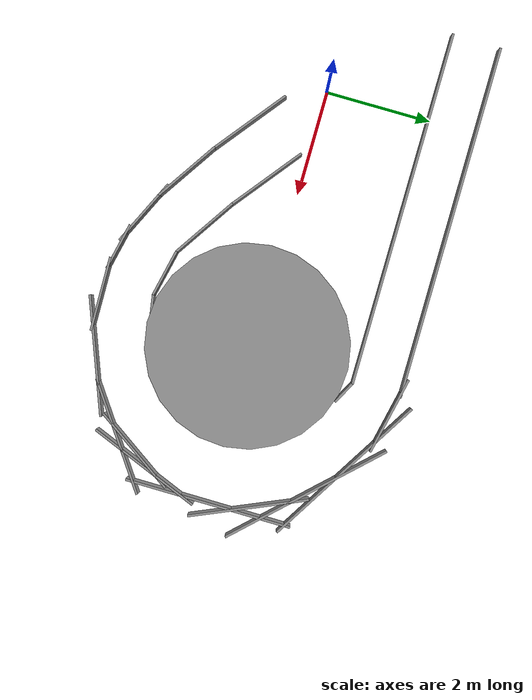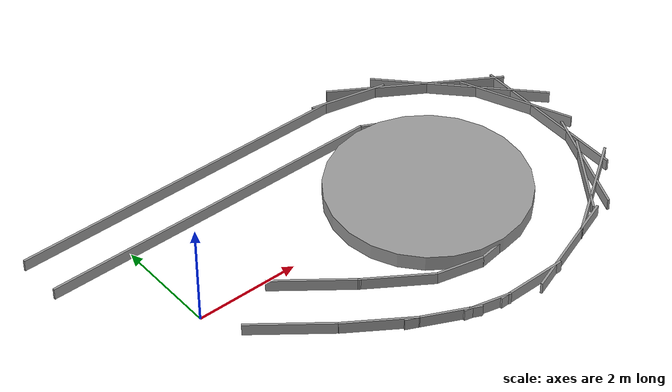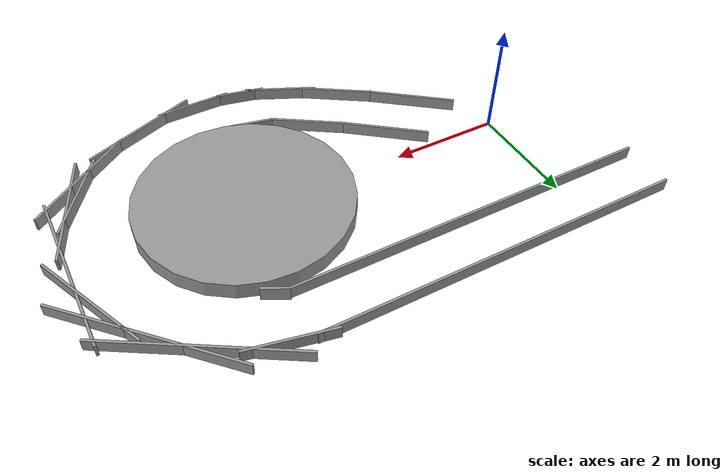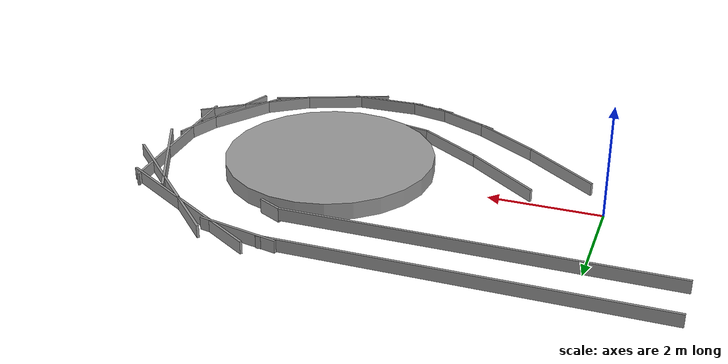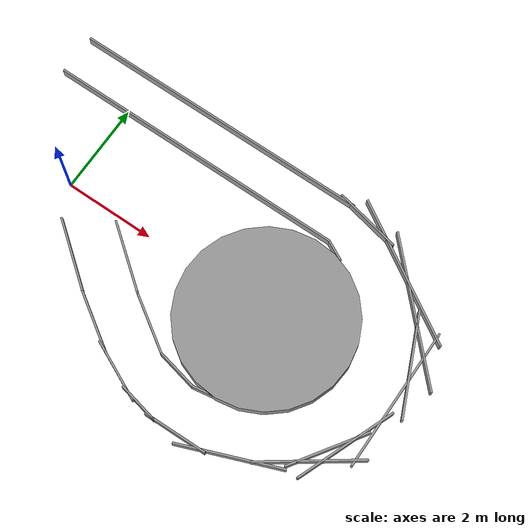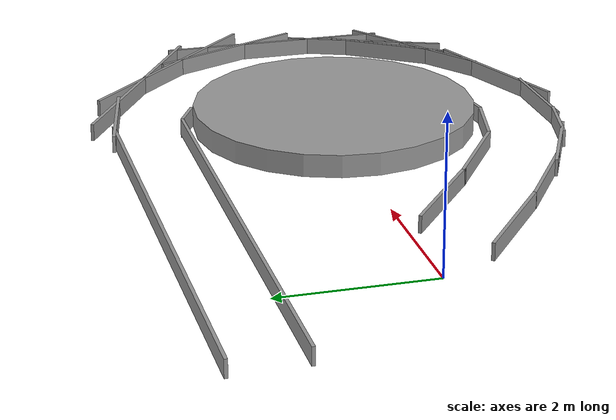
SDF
<sdf version="1.5">
 <world name="default">
  <model name="grey_wall_track_1">
   <link name="link">
    <pose>0 0 1.4 0 -0 0</pose>
    <inertial>
     <inertia><ixx>nan</ixx><ixy>0</ixy><ixz>0</ixz><iyy>nan</iyy><iyz>0</iyz><izz>nan</izz></inertia>
     <mass>0</mass>
    </inertial>
    <visual name="visual">
     <cast_shadows>0</cast_shadows>
     <geometry><box><size>6.7262 0.043266 0.226147</size></box></geometry>
     <material>
      <script>
       <uri>model://grey_wall/materials/scripts</uri>
       <uri>model://grey_wall/materials/textures</uri>
       <name>vrc/grey_wall</name>
      </script>
      <ambient>1 1 1 1</ambient>
      <diffuse>1 1 1 1</diffuse>
      <specular>0 0 0 1</specular>
      <emissive>0 0 0 1</emissive>
     </material>
    </visual>
    <collision name="collision">
     <geometry><box><size>6.7262 0.043266 0.226147</size></box></geometry>
     <surface>
      <friction>
       <ode><mu>1</mu><mu2>1</mu2><fdir1>0 0 0</fdir1><slip1>0</slip1><slip2>0</slip2></ode>
       <torsional>
        <coefficient>1</coefficient>
        <patch_radius>0</patch_radius>
        <surface_radius>0</surface_radius>
        <use_patch_radius>1</use_patch_radius>
        <ode><slip>0</slip></ode>
       </torsional>
      </friction>
      <bounce><restitution_coefficient>0</restitution_coefficient><threshold>1e+06</threshold></bounce>
      <contact>
       <collide_without_contact>0</collide_without_contact>
       <collide_without_contact_bitmask>1</collide_without_contact_bitmask>
       <collide_bitmask>1</collide_bitmask>
       <ode>
        <soft_cfm>0</soft_cfm>
        <soft_erp>0.2</soft_erp>
        <kp>1e+13</kp>
        <kd>1</kd>
        <max_vel>0.01</max_vel>
        <min_depth>0</min_depth>
       </ode>
       <bullet>
        <split_impulse>1</split_impulse>
        <split_impulse_penetration_threshold>-0.01</split_impulse_penetration_threshold>
        <soft_cfm>0</soft_cfm>
        <soft_erp>0.2</soft_erp>
        <kp>1e+13</kp>
        <kd>1</kd>
       </bullet>
      </contact>
     </surface>
    </collision>
   </link>
   <static>1</static>
   <pose>1.7337 1.94342 -1.28559 0 -0 0</pose>
  </model>
  <model name="grey_wall_track_2">
   <link name="link">
    <pose>0 0 1.4 0 -0 0</pose>
    <inertial>
     <inertia><ixx>nan</ixx><ixy>0</ixy><ixz>0</ixz><iyy>nan</iyy><iyz>0</iyz><izz>nan</izz></inertia>
     <mass>0</mass>
    </inertial>
    <visual name="visual">
     <cast_shadows>0</cast_shadows>
     <geometry><box><size>6.7262 0.043266 0.226147</size></box></geometry>
     <material>
      <script>
       <uri>model://grey_wall/materials/scripts</uri>
       <uri>model://grey_wall/materials/textures</uri>
       <name>vrc/grey_wall</name>
      </script>
      <ambient>1 1 1 1</ambient>
      <diffuse>1 1 1 1</diffuse>
      <specular>0 0 0 1</specular>
      <emissive>0 0 0 1</emissive>
     </material>
    </visual>
    <collision name="collision">
     <geometry><box><size>6.7262 0.043266 0.226147</size></box></geometry>
     <surface>
      <friction>
       <ode><mu>1</mu><mu2>1</mu2><fdir1>0 0 0</fdir1><slip1>0</slip1><slip2>0</slip2></ode>
       <torsional>
        <coefficient>1</coefficient>
        <patch_radius>0</patch_radius>
        <surface_radius>0</surface_radius>
        <use_patch_radius>1</use_patch_radius>
        <ode><slip>0</slip></ode>
       </torsional>
      </friction>
      <bounce><restitution_coefficient>0</restitution_coefficient><threshold>1e+06</threshold></bounce>
      <contact>
       <collide_without_contact>0</collide_without_contact>
       <collide_without_contact_bitmask>1</collide_without_contact_bitmask>
       <collide_bitmask>1</collide_bitmask>
       <ode>
        <soft_cfm>0</soft_cfm>
        <soft_erp>0.2</soft_erp>
        <kp>1e+13</kp>
        <kd>1</kd>
        <max_vel>0.01</max_vel>
        <min_depth>0</min_depth>
       </ode>
       <bullet>
        <split_impulse>1</split_impulse>
        <split_impulse_penetration_threshold>-0.01</split_impulse_penetration_threshold>
        <soft_cfm>0</soft_cfm>
        <soft_erp>0.2</soft_erp>
        <kp>1e+13</kp>
        <kd>1</kd>
       </bullet>
      </contact>
     </surface>
    </collision>
   </link>
   <static>1</static>
   <pose>1.73864 2.86141 -1.30508 0 -0 0</pose>
  </model>
  <model name="grey_wall_twisted_s_2">
   <link name="link">
    <pose>0 0 1.4 0 0 -0.580025</pose>
    <inertial>
     <inertia><ixx>nan</ixx><ixy>0</ixy><ixz>0</ixz><iyy>nan</iyy><iyz>0</iyz><izz>nan</izz></inertia>
     <mass>0</mass>
    </inertial>
    <visual name="visual">
     <cast_shadows>0</cast_shadows>
     <geometry><box><size>1.36861 0.043266 0.226147</size></box></geometry>
     <material>
      <script>
       <uri>model://grey_wall/materials/scripts</uri>
       <uri>model://grey_wall/materials/textures</uri>
       <name>vrc/grey_wall</name>
      </script>
      <ambient>1 1 1 1</ambient>
      <diffuse>1 1 1 1</diffuse>
      <specular>0 0 0 1</specular>
      <emissive>0 0 0 1</emissive>
     </material>
    </visual>
    <collision name="collision">
     <geometry><box><size>1.36861 0.043266 0.226147</size></box></geometry>
     <surface>
      <friction>
       <ode><mu>1</mu><mu2>1</mu2><fdir1>0 0 0</fdir1><slip1>0</slip1><slip2>0</slip2></ode>
       <torsional>
        <coefficient>1</coefficient>
        <patch_radius>0</patch_radius>
        <surface_radius>0</surface_radius>
        <use_patch_radius>1</use_patch_radius>
        <ode><slip>0</slip></ode>
       </torsional>
      </friction>
      <bounce><restitution_coefficient>0</restitution_coefficient><threshold>1e+06</threshold></bounce>
      <contact>
       <collide_without_contact>0</collide_without_contact>
       <collide_without_contact_bitmask>1</collide_without_contact_bitmask>
       <collide_bitmask>1</collide_bitmask>
       <ode>
        <soft_cfm>0</soft_cfm>
        <soft_erp>0.2</soft_erp>
        <kp>1e+13</kp>
        <kd>1</kd>
        <max_vel>0.01</max_vel>
        <min_depth>0</min_depth>
       </ode>
       <bullet>
        <split_impulse>1</split_impulse>
        <split_impulse_penetration_threshold>-0.01</split_impulse_penetration_threshold>
        <soft_cfm>0</soft_cfm>
        <soft_erp>0.2</soft_erp>
        <kp>1e+13</kp>
        <kd>1</kd>
       </bullet>
      </contact>
     </surface>
    </collision>
   </link>
   <static>1</static>
   <pose>3.08955 -1.47755 -1.30469 0 -0 0</pose>
  </model>
  <model name="grey_wall_twisted_z_4">
   <link name="link">
    <pose>0 0 1.4 0 0 -0.211768</pose>
    <inertial>
     <inertia><ixx>nan</ixx><ixy>0</ixy><ixz>0</ixz><iyy>nan</iyy><iyz>0</iyz><izz>nan</izz></inertia>
     <mass>0</mass>
    </inertial>
    <visual name="visual">
     <cast_shadows>0</cast_shadows>
     <geometry><box><size>0.9086 0.043266 0.226147</size></box></geometry>
     <material>
      <script>
       <uri>model://grey_wall/materials/scripts</uri>
       <uri>model://grey_wall/materials/textures</uri>
       <name>vrc/grey_wall</name>
      </script>
      <ambient>1 1 1 1</ambient>
      <diffuse>1 1 1 1</diffuse>
      <specular>0 0 0 1</specular>
      <emissive>0 0 0 1</emissive>
     </material>
    </visual>
    <collision name="collision">
     <geometry><box><size>0.9086 0.043266 0.226147</size></box></geometry>
     <surface>
      <friction>
       <ode><mu>1</mu><mu2>1</mu2><fdir1>0 0 0</fdir1><slip1>0</slip1><slip2>0</slip2></ode>
       <torsional>
        <coefficient>1</coefficient>
        <patch_radius>0</patch_radius>
        <surface_radius>0</surface_radius>
        <use_patch_radius>1</use_patch_radius>
        <ode><slip>0</slip></ode>
       </torsional>
      </friction>
      <bounce><restitution_coefficient>0</restitution_coefficient><threshold>1e+06</threshold></bounce>
      <contact>
       <collide_without_contact>0</collide_without_contact>
       <collide_without_contact_bitmask>1</collide_without_contact_bitmask>
       <collide_bitmask>1</collide_bitmask>
       <ode>
        <soft_cfm>0</soft_cfm>
        <soft_erp>0.2</soft_erp>
        <kp>1e+13</kp>
        <kd>1</kd>
        <max_vel>0.01</max_vel>
        <min_depth>0</min_depth>
       </ode>
       <bullet>
        <split_impulse>1</split_impulse>
        <split_impulse_penetration_threshold>-0.01</split_impulse_penetration_threshold>
        <soft_cfm>0</soft_cfm>
        <soft_erp>0.2</soft_erp>
        <kp>1e+13</kp>
        <kd>1</kd>
       </bullet>
      </contact>
     </surface>
    </collision>
   </link>
   <static>1</static>
   <pose>4.09788 -1.94353 -1.30469 0 -0 0</pose>
  </model>
  <model name="unit_cylinder3">
   <link name="link">
    <inertial>
     <mass>0.30371</mass>
     <inertia>
      <ixx>0.0213162</ixx>
      <ixy>0</ixy>
      <ixz>0</ixz>
      <iyy>0.0213162</iyy>
      <iyz>0</iyz>
      <izz>0.0379638</izz>
     </inertia>
    </inertial>
    <visual name="visual">
     <geometry><cylinder><radius>1.89087</radius><length>0.303709</length></cylinder></geometry>
     <material>
      <script><name>Gazebo/Grey</name><uri>file://media/materials/scripts/gazebo.material</uri></script>
      <ambient>0.3 0.3 0.3 1</ambient>
      <diffuse>0.7 0.7 0.7 1</diffuse>
      <specular>0.01 0.01 0.01 1</specular>
      <emissive>0 0 0 1</emissive>
     </material>
    </visual>
    <collision name="collision">
     <geometry><cylinder><radius>1.89087</radius><length>0.303709</length></cylinder></geometry>
     <surface>
      <friction>
       <ode><mu>1</mu><mu2>1</mu2><fdir1>0 0 0</fdir1><slip1>0</slip1><slip2>0</slip2></ode>
       <torsional>
        <coefficient>1</coefficient>
        <patch_radius>0</patch_radius>
        <surface_radius>0</surface_radius>
        <use_patch_radius>1</use_patch_radius>
        <ode><slip>0</slip></ode>
       </torsional>
      </friction>
      <bounce><restitution_coefficient>0</restitution_coefficient><threshold>1e+06</threshold></bounce>
      <contact>
       <collide_without_contact>0</collide_without_contact>
       <collide_without_contact_bitmask>1</collide_without_contact_bitmask>
       <collide_bitmask>1</collide_bitmask>
       <ode>
        <soft_cfm>0</soft_cfm>
        <soft_erp>0.2</soft_erp>
        <kp>1e+13</kp>
        <kd>1</kd>
        <max_vel>0.01</max_vel>
        <min_depth>0</min_depth>
       </ode>
       <bullet>
        <split_impulse>1</split_impulse>
        <split_impulse_penetration_threshold>-0.01</split_impulse_penetration_threshold>
        <soft_cfm>0</soft_cfm>
        <soft_erp>0.2</soft_erp>
        <kp>1e+13</kp>
        <kd>1</kd>
       </bullet>
      </contact>
     </surface>
    </collision>
   </link>
   <static>0</static>
   <pose>4.95647 -0.103734 0.152854 0 -0 0.04995</pose>
  </model>
  <model name="grey_wall_twisted_b_3">
   <link name="link">
    <pose>0 0 1.4 0 -0 0.168525</pose>
    <inertial>
     <inertia><ixx>nan</ixx><ixy>0</ixy><ixz>0</ixz><iyy>nan</iyy><iyz>0</iyz><izz>nan</izz></inertia>
     <mass>0</mass>
    </inertial>
    <visual name="visual">
     <cast_shadows>0</cast_shadows>
     <geometry><box><size>0.67315 0.043266 0.226147</size></box></geometry>
     <material>
      <script>
       <uri>model://grey_wall/materials/scripts</uri>
       <uri>model://grey_wall/materials/textures</uri>
       <name>vrc/grey_wall</name>
      </script>
      <ambient>1 1 1 1</ambient>
      <diffuse>1 1 1 1</diffuse>
      <specular>0 0 0 1</specular>
      <emissive>0 0 0 1</emissive>
     </material>
    </visual>
    <collision name="collision">
     <geometry><box><size>0.67315 0.043266 0.226147</size></box></geometry>
     <surface>
      <friction>
       <ode><mu>1</mu><mu2>1</mu2><fdir1>0 0 0</fdir1><slip1>0</slip1><slip2>0</slip2></ode>
       <torsional>
        <coefficient>1</coefficient>
        <patch_radius>0</patch_radius>
        <surface_radius>0</surface_radius>
        <use_patch_radius>1</use_patch_radius>
        <ode><slip>0</slip></ode>
       </torsional>
      </friction>
      <bounce><restitution_coefficient>0</restitution_coefficient><threshold>1e+06</threshold></bounce>
      <contact>
       <collide_without_contact>0</collide_without_contact>
       <collide_without_contact_bitmask>1</collide_without_contact_bitmask>
       <collide_bitmask>1</collide_bitmask>
       <ode>
        <soft_cfm>0</soft_cfm>
        <soft_erp>0.2</soft_erp>
        <kp>1e+13</kp>
        <kd>1</kd>
        <max_vel>0.01</max_vel>
        <min_depth>0</min_depth>
       </ode>
       <bullet>
        <split_impulse>1</split_impulse>
        <split_impulse_penetration_threshold>-0.01</split_impulse_penetration_threshold>
        <soft_cfm>0</soft_cfm>
        <soft_erp>0.2</soft_erp>
        <kp>1e+13</kp>
        <kd>1</kd>
       </bullet>
      </contact>
     </surface>
    </collision>
   </link>
   <static>1</static>
   <pose>4.8563 -1.98315 -1.30532 0 -0 0</pose>
  </model>
  <model name="grey_wall_twisted_c_0">
   <link name="link">
    <pose>0 0 1.4 0 0 -0.480065</pose>
    <inertial>
     <inertia><ixx>nan</ixx><ixy>0</ixy><ixz>0</ixz><iyy>nan</iyy><iyz>0</iyz><izz>nan</izz></inertia>
     <mass>0</mass>
    </inertial>
    <visual name="visual">
     <cast_shadows>0</cast_shadows>
     <geometry><box><size>0.469435 0.043266 0.261158</size></box></geometry>
     <material>
      <script>
       <uri>model://grey_wall/materials/scripts</uri>
       <uri>model://grey_wall/materials/textures</uri>
       <name>vrc/grey_wall</name>
      </script>
      <ambient>1 1 1 1</ambient>
      <diffuse>1 1 1 1</diffuse>
      <specular>0 0 0 1</specular>
      <emissive>0 0 0 1</emissive>
     </material>
    </visual>
    <collision name="collision">
     <geometry><box><size>0.469435 0.043266 0.261158</size></box></geometry>
     <surface>
      <friction>
       <ode><mu>1</mu><mu2>1</mu2><fdir1>0 0 0</fdir1><slip1>0</slip1><slip2>0</slip2></ode>
       <torsional>
        <coefficient>1</coefficient>
        <patch_radius>0</patch_radius>
        <surface_radius>0</surface_radius>
        <use_patch_radius>1</use_patch_radius>
        <ode><slip>0</slip></ode>
       </torsional>
      </friction>
      <bounce><restitution_coefficient>0</restitution_coefficient><threshold>1e+06</threshold></bounce>
      <contact>
       <collide_without_contact>0</collide_without_contact>
       <collide_without_contact_bitmask>1</collide_without_contact_bitmask>
       <collide_bitmask>1</collide_bitmask>
       <ode>
        <soft_cfm>0</soft_cfm>
        <soft_erp>0.2</soft_erp>
        <kp>1e+13</kp>
        <kd>1</kd>
        <max_vel>0.01</max_vel>
        <min_depth>0</min_depth>
       </ode>
       <bullet>
        <split_impulse>1</split_impulse>
        <split_impulse_penetration_threshold>-0.01</split_impulse_penetration_threshold>
        <soft_cfm>0</soft_cfm>
        <soft_erp>0.2</soft_erp>
        <kp>1e+13</kp>
        <kd>1</kd>
       </bullet>
      </contact>
     </surface>
    </collision>
   </link>
   <static>1</static>
   <pose>5.2931 1.83753 -1.30532 0 -0 0</pose>
  </model>
  <model name="grey_wall_twisted_s_1_0">
   <link name="link">
    <pose>0 0 1.4 0 0 -0.660395</pose>
    <inertial>
     <inertia><ixx>nan</ixx><ixy>0</ixy><ixz>0</ixz><iyy>nan</iyy><iyz>0</iyz><izz>nan</izz></inertia>
     <mass>0</mass>
    </inertial>
    <visual name="visual">
     <cast_shadows>0</cast_shadows>
     <geometry><box><size>1.62445 0.043266 0.226147</size></box></geometry>
     <material>
      <script>
       <uri>model://grey_wall/materials/scripts</uri>
       <uri>model://grey_wall/materials/textures</uri>
       <name>vrc/grey_wall</name>
      </script>
      <ambient>1 1 1 1</ambient>
      <diffuse>1 1 1 1</diffuse>
      <specular>0 0 0 1</specular>
      <emissive>0 0 0 1</emissive>
     </material>
    </visual>
    <collision name="collision">
     <geometry><box><size>1.62445 0.043266 0.226147</size></box></geometry>
     <surface>
      <friction>
       <ode><mu>1</mu><mu2>1</mu2><fdir1>0 0 0</fdir1><slip1>0</slip1><slip2>0</slip2></ode>
       <torsional>
        <coefficient>1</coefficient>
        <patch_radius>0</patch_radius>
        <surface_radius>0</surface_radius>
        <use_patch_radius>1</use_patch_radius>
        <ode><slip>0</slip></ode>
       </torsional>
      </friction>
      <bounce><restitution_coefficient>0</restitution_coefficient><threshold>1e+06</threshold></bounce>
      <contact>
       <collide_without_contact>0</collide_without_contact>
       <collide_without_contact_bitmask>1</collide_without_contact_bitmask>
       <collide_bitmask>1</collide_bitmask>
       <ode>
        <soft_cfm>0</soft_cfm>
        <soft_erp>0.2</soft_erp>
        <kp>1e+13</kp>
        <kd>1</kd>
        <max_vel>0.01</max_vel>
        <min_depth>0</min_depth>
       </ode>
       <bullet>
        <split_impulse>1</split_impulse>
        <split_impulse_penetration_threshold>-0.01</split_impulse_penetration_threshold>
        <soft_cfm>0</soft_cfm>
        <soft_erp>0.2</soft_erp>
        <kp>1e+13</kp>
        <kd>1</kd>
       </bullet>
      </contact>
     </surface>
    </collision>
   </link>
   <static>1</static>
   <pose>1.91984 -0.636241 -1.30469 0 -0 0</pose>
  </model>
  <model name="grey_wall_twisted_s_1_0_clone">
   <link name="link">
    <pose>0 0 1.4 0 0 -0.660395</pose>
    <inertial>
     <inertia><ixx>nan</ixx><ixy>0</ixy><ixz>0</ixz><iyy>nan</iyy><iyz>0</iyz><izz>nan</izz></inertia>
     <mass>0</mass>
    </inertial>
    <visual name="visual">
     <cast_shadows>0</cast_shadows>
     <geometry><box><size>1.62445 0.043266 0.226147</size></box></geometry>
     <material>
      <script>
       <uri>model://grey_wall/materials/scripts</uri>
       <uri>model://grey_wall/materials/textures</uri>
       <name>vrc/grey_wall</name>
      </script>
      <ambient>1 1 1 1</ambient>
      <diffuse>1 1 1 1</diffuse>
      <specular>0 0 0 1</specular>
      <emissive>0 0 0 1</emissive>
     </material>
    </visual>
    <collision name="collision">
     <geometry><box><size>1.62445 0.043266 0.226147</size></box></geometry>
     <surface>
      <friction>
       <ode><mu>1</mu><mu2>1</mu2><fdir1>0 0 0</fdir1><slip1>0</slip1><slip2>0</slip2></ode>
       <torsional>
        <coefficient>1</coefficient>
        <patch_radius>0</patch_radius>
        <surface_radius>0</surface_radius>
        <use_patch_radius>1</use_patch_radius>
        <ode><slip>0</slip></ode>
       </torsional>
      </friction>
      <bounce><restitution_coefficient>0</restitution_coefficient><threshold>1e+06</threshold></bounce>
      <contact>
       <collide_without_contact>0</collide_without_contact>
       <collide_without_contact_bitmask>1</collide_without_contact_bitmask>
       <collide_bitmask>1</collide_bitmask>
       <ode>
        <soft_cfm>0</soft_cfm>
        <soft_erp>0.2</soft_erp>
        <kp>1e+13</kp>
        <kd>1</kd>
        <max_vel>0.01</max_vel>
        <min_depth>0</min_depth>
       </ode>
       <bullet>
        <split_impulse>1</split_impulse>
        <split_impulse_penetration_threshold>-0.01</split_impulse_penetration_threshold>
        <soft_cfm>0</soft_cfm>
        <soft_erp>0.2</soft_erp>
        <kp>1e+13</kp>
        <kd>1</kd>
       </bullet>
      </contact>
     </surface>
    </collision>
   </link>
   <static>1</static>
   <pose>0.973487 -1.21034 -1.30469 0 -0 0</pose>
  </model>
  <model name="grey_wall_twisted_z_4_clone">
   <link name="link">
    <pose>0 0 1.4 0 0 -0.211768</pose>
    <inertial>
     <inertia><ixx>nan</ixx><ixy>0</ixy><ixz>0</ixz><iyy>nan</iyy><iyz>0</iyz><izz>nan</izz></inertia>
     <mass>0</mass>
    </inertial>
    <visual name="visual">
     <cast_shadows>0</cast_shadows>
     <geometry><box><size>0.9086 0.043266 0.226147</size></box></geometry>
     <material>
      <script>
       <uri>model://grey_wall/materials/scripts</uri>
       <uri>model://grey_wall/materials/textures</uri>
       <name>vrc/grey_wall</name>
      </script>
      <ambient>1 1 1 1</ambient>
      <diffuse>1 1 1 1</diffuse>
      <specular>0 0 0 1</specular>
      <emissive>0 0 0 1</emissive>
     </material>
    </visual>
    <collision name="collision">
     <geometry><box><size>0.9086 0.043266 0.226147</size></box></geometry>
     <surface>
      <friction>
       <ode><mu>1</mu><mu2>1</mu2><fdir1>0 0 0</fdir1><slip1>0</slip1><slip2>0</slip2></ode>
       <torsional>
        <coefficient>1</coefficient>
        <patch_radius>0</patch_radius>
        <surface_radius>0</surface_radius>
        <use_patch_radius>1</use_patch_radius>
        <ode><slip>0</slip></ode>
       </torsional>
      </friction>
      <bounce><restitution_coefficient>0</restitution_coefficient><threshold>1e+06</threshold></bounce>
      <contact>
       <collide_without_contact>0</collide_without_contact>
       <collide_without_contact_bitmask>1</collide_without_contact_bitmask>
       <collide_bitmask>1</collide_bitmask>
       <ode>
        <soft_cfm>0</soft_cfm>
        <soft_erp>0.2</soft_erp>
        <kp>1e+13</kp>
        <kd>1</kd>
        <max_vel>0.01</max_vel>
        <min_depth>0</min_depth>
       </ode>
       <bullet>
        <split_impulse>1</split_impulse>
        <split_impulse_penetration_threshold>-0.01</split_impulse_penetration_threshold>
        <soft_cfm>0</soft_cfm>
        <soft_erp>0.2</soft_erp>
        <kp>1e+13</kp>
        <kd>1</kd>
       </bullet>
      </contact>
     </surface>
    </collision>
   </link>
   <static>1</static>
   <pose>3.86395 -2.9007 -1.30469 0 -0 0</pose>
  </model>
  <model name="grey_wall_twisted_s_2_clone">
   <link name="link">
    <pose>0 0 1.4 0 0 -0.580025</pose>
    <inertial>
     <inertia><ixx>nan</ixx><ixy>0</ixy><ixz>0</ixz><iyy>nan</iyy><iyz>0</iyz><izz>nan</izz></inertia>
     <mass>0</mass>
    </inertial>
    <visual name="visual">
     <cast_shadows>0</cast_shadows>
     <geometry><box><size>1.36861 0.043266 0.226147</size></box></geometry>
     <material>
      <script>
       <uri>model://grey_wall/materials/scripts</uri>
       <uri>model://grey_wall/materials/textures</uri>
       <name>vrc/grey_wall</name>
      </script>
      <ambient>1 1 1 1</ambient>
      <diffuse>1 1 1 1</diffuse>
      <specular>0 0 0 1</specular>
      <emissive>0 0 0 1</emissive>
     </material>
    </visual>
    <collision name="collision">
     <geometry><box><size>1.36861 0.043266 0.226147</size></box></geometry>
     <surface>
      <friction>
       <ode><mu>1</mu><mu2>1</mu2><fdir1>0 0 0</fdir1><slip1>0</slip1><slip2>0</slip2></ode>
       <torsional>
        <coefficient>1</coefficient>
        <patch_radius>0</patch_radius>
        <surface_radius>0</surface_radius>
        <use_patch_radius>1</use_patch_radius>
        <ode><slip>0</slip></ode>
       </torsional>
      </friction>
      <bounce><restitution_coefficient>0</restitution_coefficient><threshold>1e+06</threshold></bounce>
      <contact>
       <collide_without_contact>0</collide_without_contact>
       <collide_without_contact_bitmask>1</collide_without_contact_bitmask>
       <collide_bitmask>1</collide_bitmask>
       <ode>
        <soft_cfm>0</soft_cfm>
        <soft_erp>0.2</soft_erp>
        <kp>1e+13</kp>
        <kd>1</kd>
        <max_vel>0.01</max_vel>
        <min_depth>0</min_depth>
       </ode>
       <bullet>
        <split_impulse>1</split_impulse>
        <split_impulse_penetration_threshold>-0.01</split_impulse_penetration_threshold>
        <soft_cfm>0</soft_cfm>
        <soft_erp>0.2</soft_erp>
        <kp>1e+13</kp>
        <kd>1</kd>
       </bullet>
      </contact>
     </surface>
    </collision>
   </link>
   <static>1</static>
   <pose>2.17574 -2.07883 -1.30469 0 -0 0</pose>
  </model>
  <model name="grey_wall_twisted_ss">
   <link name="link">
    <pose>0 0 1.4 0 0 -0.436758</pose>
    <inertial>
     <inertia><ixx>nan</ixx><ixy>0</ixy><ixz>0</ixz><iyy>nan</iyy><iyz>0</iyz><izz>nan</izz></inertia>
     <mass>0</mass>
    </inertial>
    <visual name="visual">
     <cast_shadows>0</cast_shadows>
     <geometry><box><size>1.36861 0.043266 0.226147</size></box></geometry>
     <material>
      <script>
       <uri>model://grey_wall/materials/scripts</uri>
       <uri>model://grey_wall/materials/textures</uri>
       <name>vrc/grey_wall</name>
      </script>
      <ambient>1 1 1 1</ambient>
      <diffuse>1 1 1 1</diffuse>
      <specular>0 0 0 1</specular>
      <emissive>0 0 0 1</emissive>
     </material>
    </visual>
    <collision name="collision">
     <geometry><box><size>1.36861 0.043266 0.226147</size></box></geometry>
     <surface>
      <friction>
       <ode><mu>1</mu><mu2>1</mu2><fdir1>0 0 0</fdir1><slip1>0</slip1><slip2>0</slip2></ode>
       <torsional>
        <coefficient>1</coefficient>
        <patch_radius>0</patch_radius>
        <surface_radius>0</surface_radius>
        <use_patch_radius>1</use_patch_radius>
        <ode><slip>0</slip></ode>
       </torsional>
      </friction>
      <bounce><restitution_coefficient>0</restitution_coefficient><threshold>1e+06</threshold></bounce>
      <contact>
       <collide_without_contact>0</collide_without_contact>
       <collide_without_contact_bitmask>1</collide_without_contact_bitmask>
       <collide_bitmask>1</collide_bitmask>
       <ode>
        <soft_cfm>0</soft_cfm>
        <soft_erp>0.2</soft_erp>
        <kp>1e+13</kp>
        <kd>1</kd>
        <max_vel>0.01</max_vel>
        <min_depth>0</min_depth>
       </ode>
       <bullet>
        <split_impulse>1</split_impulse>
        <split_impulse_penetration_threshold>-0.01</split_impulse_penetration_threshold>
        <soft_cfm>0</soft_cfm>
        <soft_erp>0.2</soft_erp>
        <kp>1e+13</kp>
        <kd>1</kd>
       </bullet>
      </contact>
     </surface>
    </collision>
   </link>
   <static>1</static>
   <pose>3.12527 -2.62707 -1.30469 0 -0 0</pose>
  </model>
  <model name="grey_wall_small_6_clone_clone">
   <link name="link">
    <pose>0 0 1.4 0 -0 0.009516</pose>
    <inertial>
     <inertia><ixx>nan</ixx><ixy>0</ixy><ixz>0</ixz><iyy>nan</iyy><iyz>0</iyz><izz>nan</izz></inertia>
     <mass>0</mass>
    </inertial>
    <visual name="visual">
     <cast_shadows>0</cast_shadows>
     <geometry><box><size>3.14897 0.043266 0.226147</size></box></geometry>
     <material>
      <script>
       <uri>model://grey_wall/materials/scripts</uri>
       <uri>model://grey_wall/materials/textures</uri>
       <name>vrc/grey_wall</name>
      </script>
      <ambient>1 1 1 1</ambient>
      <diffuse>1 1 1 1</diffuse>
      <specular>0 0 0 1</specular>
      <emissive>0 0 0 1</emissive>
     </material>
    </visual>
    <collision name="collision">
     <geometry><box><size>3.14897 0.043266 0.226147</size></box></geometry>
     <surface>
      <friction>
       <ode><mu>1</mu><mu2>1</mu2><fdir1>0 0 0</fdir1><slip1>0</slip1><slip2>0</slip2></ode>
       <torsional>
        <coefficient>1</coefficient>
        <patch_radius>0</patch_radius>
        <surface_radius>0</surface_radius>
        <use_patch_radius>1</use_patch_radius>
        <ode><slip>0</slip></ode>
       </torsional>
      </friction>
      <bounce><restitution_coefficient>0</restitution_coefficient><threshold>1e+06</threshold></bounce>
      <contact>
       <collide_without_contact>0</collide_without_contact>
       <collide_without_contact_bitmask>1</collide_without_contact_bitmask>
       <collide_bitmask>1</collide_bitmask>
       <ode>
        <soft_cfm>0</soft_cfm>
        <soft_erp>0.2</soft_erp>
        <kp>1e+13</kp>
        <kd>1</kd>
        <max_vel>0.01</max_vel>
        <min_depth>0</min_depth>
       </ode>
       <bullet>
        <split_impulse>1</split_impulse>
        <split_impulse_penetration_threshold>-0.01</split_impulse_penetration_threshold>
        <soft_cfm>0</soft_cfm>
        <soft_erp>0.2</soft_erp>
        <kp>1e+13</kp>
        <kd>1</kd>
       </bullet>
      </contact>
     </surface>
    </collision>
   </link>
   <static>1</static>
   <pose>7.94232 -0.003249 -1.30963 0 -0 1.55954</pose>
  </model>
  <model name="grey_wall_twisted_ll_5_clone">
   <link name="link">
    <pose>0 0 1.4 0 -0 0.372344</pose>
    <inertial>
     <inertia><ixx>nan</ixx><ixy>0</ixy><ixz>0</ixz><iyy>nan</iyy><iyz>0</iyz><izz>nan</izz></inertia>
     <mass>0</mass>
    </inertial>
    <visual name="visual">
     <cast_shadows>0</cast_shadows>
     <geometry><box><size>2.25374 0.043266 0.226147</size></box></geometry>
     <material>
      <script>
       <uri>model://grey_wall/materials/scripts</uri>
       <uri>model://grey_wall/materials/textures</uri>
       <name>vrc/grey_wall</name>
      </script>
      <ambient>1 1 1 1</ambient>
      <diffuse>1 1 1 1</diffuse>
      <specular>0 0 0 1</specular>
      <emissive>0 0 0 1</emissive>
     </material>
    </visual>
    <collision name="collision">
     <geometry><box><size>2.25374 0.043266 0.226147</size></box></geometry>
     <surface>
      <friction>
       <ode><mu>1</mu><mu2>1</mu2><fdir1>0 0 0</fdir1><slip1>0</slip1><slip2>0</slip2></ode>
       <torsional>
        <coefficient>1</coefficient>
        <patch_radius>0</patch_radius>
        <surface_radius>0</surface_radius>
        <use_patch_radius>1</use_patch_radius>
        <ode><slip>0</slip></ode>
       </torsional>
      </friction>
      <bounce><restitution_coefficient>0</restitution_coefficient><threshold>1e+06</threshold></bounce>
      <contact>
       <collide_without_contact>0</collide_without_contact>
       <collide_without_contact_bitmask>1</collide_without_contact_bitmask>
       <collide_bitmask>1</collide_bitmask>
       <ode>
        <soft_cfm>0</soft_cfm>
        <soft_erp>0.2</soft_erp>
        <kp>1e+13</kp>
        <kd>1</kd>
        <max_vel>0.01</max_vel>
        <min_depth>0</min_depth>
       </ode>
       <bullet>
        <split_impulse>1</split_impulse>
        <split_impulse_penetration_threshold>-0.01</split_impulse_penetration_threshold>
        <soft_cfm>0</soft_cfm>
        <soft_erp>0.2</soft_erp>
        <kp>1e+13</kp>
        <kd>1</kd>
       </bullet>
      </contact>
     </surface>
    </collision>
   </link>
   <static>1</static>
   <pose>5.91093 -2.74839 -1.30539 0 -0 0</pose>
  </model>
  <model name="grey_wall_twisted_zz_0">
   <link name="link">
    <pose>0 0 1.4 0 -0 0.022643</pose>
    <inertial>
     <inertia><ixx>nan</ixx><ixy>0</ixy><ixz>0</ixz><iyy>nan</iyy><iyz>0</iyz><izz>nan</izz></inertia>
     <mass>0</mass>
    </inertial>
    <visual name="visual">
     <cast_shadows>0</cast_shadows>
     <geometry><box><size>1.40091 0.043266 0.226147</size></box></geometry>
     <material>
      <script>
       <uri>model://grey_wall/materials/scripts</uri>
       <uri>model://grey_wall/materials/textures</uri>
       <name>vrc/grey_wall</name>
      </script>
      <ambient>1 1 1 1</ambient>
      <diffuse>1 1 1 1</diffuse>
      <specular>0 0 0 1</specular>
      <emissive>0 0 0 1</emissive>
     </material>
    </visual>
    <collision name="collision">
     <geometry><box><size>1.40091 0.043266 0.226147</size></box></geometry>
     <surface>
      <friction>
       <ode><mu>1</mu><mu2>1</mu2><fdir1>0 0 0</fdir1><slip1>0</slip1><slip2>0</slip2></ode>
       <torsional>
        <coefficient>1</coefficient>
        <patch_radius>0</patch_radius>
        <surface_radius>0</surface_radius>
        <use_patch_radius>1</use_patch_radius>
        <ode><slip>0</slip></ode>
       </torsional>
      </friction>
      <bounce><restitution_coefficient>0</restitution_coefficient><threshold>1e+06</threshold></bounce>
      <contact>
       <collide_without_contact>0</collide_without_contact>
       <collide_without_contact_bitmask>1</collide_without_contact_bitmask>
       <collide_bitmask>1</collide_bitmask>
       <ode>
        <soft_cfm>0</soft_cfm>
        <soft_erp>0.2</soft_erp>
        <kp>1e+13</kp>
        <kd>1</kd>
        <max_vel>0.01</max_vel>
        <min_depth>0</min_depth>
       </ode>
       <bullet>
        <split_impulse>1</split_impulse>
        <split_impulse_penetration_threshold>-0.01</split_impulse_penetration_threshold>
        <soft_cfm>0</soft_cfm>
        <soft_erp>0.2</soft_erp>
        <kp>1e+13</kp>
        <kd>1</kd>
       </bullet>
      </contact>
     </surface>
    </collision>
   </link>
   <static>1</static>
   <pose>4.79347 -2.97125 -1.30469 0 -0 0</pose>
  </model>
  <model name="grey_wall_twisted_aa">
   <link name="link">
    <pose>0 0 1.4 0 -0 0.619808</pose>
    <inertial>
     <inertia><ixx>nan</ixx><ixy>0</ixy><ixz>0</ixz><iyy>nan</iyy><iyz>0</iyz><izz>nan</izz></inertia>
     <mass>0</mass>
    </inertial>
    <visual name="visual">
     <cast_shadows>0</cast_shadows>
     <geometry><box><size>2.25374 0.043266 0.226147</size></box></geometry>
     <material>
      <script>
       <uri>model://grey_wall/materials/scripts</uri>
       <uri>model://grey_wall/materials/textures</uri>
       <name>vrc/grey_wall</name>
      </script>
      <ambient>1 1 1 1</ambient>
      <diffuse>1 1 1 1</diffuse>
      <specular>0 0 0 1</specular>
      <emissive>0 0 0 1</emissive>
     </material>
    </visual>
    <collision name="collision">
     <geometry><box><size>2.25374 0.043266 0.226147</size></box></geometry>
     <surface>
      <friction>
       <ode><mu>1</mu><mu2>1</mu2><fdir1>0 0 0</fdir1><slip1>0</slip1><slip2>0</slip2></ode>
       <torsional>
        <coefficient>1</coefficient>
        <patch_radius>0</patch_radius>
        <surface_radius>0</surface_radius>
        <use_patch_radius>1</use_patch_radius>
        <ode><slip>0</slip></ode>
       </torsional>
      </friction>
      <bounce><restitution_coefficient>0</restitution_coefficient><threshold>1e+06</threshold></bounce>
      <contact>
       <collide_without_contact>0</collide_without_contact>
       <collide_without_contact_bitmask>1</collide_without_contact_bitmask>
       <collide_bitmask>1</collide_bitmask>
       <ode>
        <soft_cfm>0</soft_cfm>
        <soft_erp>0.2</soft_erp>
        <kp>1e+13</kp>
        <kd>1</kd>
        <max_vel>0.01</max_vel>
        <min_depth>0</min_depth>
       </ode>
       <bullet>
        <split_impulse>1</split_impulse>
        <split_impulse_penetration_threshold>-0.01</split_impulse_penetration_threshold>
        <soft_cfm>0</soft_cfm>
        <soft_erp>0.2</soft_erp>
        <kp>1e+13</kp>
        <kd>1</kd>
       </bullet>
      </contact>
     </surface>
    </collision>
   </link>
   <static>1</static>
   <pose>7.23005 -1.95205 -1.30539 0 -0 0</pose>
  </model>
  <model name="grey_wall_twisted_st">
   <link name="link">
    <pose>0 0 1.4 0 -0 1.19322</pose>
    <inertial>
     <inertia><ixx>nan</ixx><ixy>0</ixy><ixz>0</ixz><iyy>nan</iyy><iyz>0</iyz><izz>nan</izz></inertia>
     <mass>0</mass>
    </inertial>
    <visual name="visual">
     <cast_shadows>0</cast_shadows>
     <geometry><box><size>2.25374 0.043266 0.226147</size></box></geometry>
     <material>
      <script>
       <uri>model://grey_wall/materials/scripts</uri>
       <uri>model://grey_wall/materials/textures</uri>
       <name>vrc/grey_wall</name>
      </script>
      <ambient>1 1 1 1</ambient>
      <diffuse>1 1 1 1</diffuse>
      <specular>0 0 0 1</specular>
      <emissive>0 0 0 1</emissive>
     </material>
    </visual>
    <collision name="collision">
     <geometry><box><size>2.25374 0.043266 0.226147</size></box></geometry>
     <surface>
      <friction>
       <ode><mu>1</mu><mu2>1</mu2><fdir1>0 0 0</fdir1><slip1>0</slip1><slip2>0</slip2></ode>
       <torsional>
        <coefficient>1</coefficient>
        <patch_radius>0</patch_radius>
        <surface_radius>0</surface_radius>
        <use_patch_radius>1</use_patch_radius>
        <ode><slip>0</slip></ode>
       </torsional>
      </friction>
      <bounce><restitution_coefficient>0</restitution_coefficient><threshold>1e+06</threshold></bounce>
      <contact>
       <collide_without_contact>0</collide_without_contact>
       <collide_without_contact_bitmask>1</collide_without_contact_bitmask>
       <collide_bitmask>1</collide_bitmask>
       <ode>
        <soft_cfm>0</soft_cfm>
        <soft_erp>0.2</soft_erp>
        <kp>1e+13</kp>
        <kd>1</kd>
        <max_vel>0.01</max_vel>
        <min_depth>0</min_depth>
       </ode>
       <bullet>
        <split_impulse>1</split_impulse>
        <split_impulse_penetration_threshold>-0.01</split_impulse_penetration_threshold>
        <soft_cfm>0</soft_cfm>
        <soft_erp>0.2</soft_erp>
        <kp>1e+13</kp>
        <kd>1</kd>
       </bullet>
      </contact>
     </surface>
    </collision>
   </link>
   <static>1</static>
   <pose>7.62938 -1.31083 -1.30539 0 -0 0</pose>
  </model>
  <model name="grey_wall_twisted_zs">
   <link name="link">
    <pose>0 0 1.4 0 -0 0.979008</pose>
    <inertial>
     <inertia><ixx>nan</ixx><ixy>0</ixy><ixz>0</ixz><iyy>nan</iyy><iyz>0</iyz><izz>nan</izz></inertia>
     <mass>0</mass>
    </inertial>
    <visual name="visual">
     <cast_shadows>0</cast_shadows>
     <geometry><box><size>1.78241 0.043266 0.226147</size></box></geometry>
     <material>
      <script>
       <uri>model://grey_wall/materials/scripts</uri>
       <uri>model://grey_wall/materials/textures</uri>
       <name>vrc/grey_wall</name>
      </script>
      <ambient>1 1 1 1</ambient>
      <diffuse>1 1 1 1</diffuse>
      <specular>0 0 0 1</specular>
      <emissive>0 0 0 1</emissive>
     </material>
    </visual>
    <collision name="collision">
     <geometry><box><size>1.78241 0.043266 0.226147</size></box></geometry>
     <surface>
      <friction>
       <ode><mu>1</mu><mu2>1</mu2><fdir1>0 0 0</fdir1><slip1>0</slip1><slip2>0</slip2></ode>
       <torsional>
        <coefficient>1</coefficient>
        <patch_radius>0</patch_radius>
        <surface_radius>0</surface_radius>
        <use_patch_radius>1</use_patch_radius>
        <ode><slip>0</slip></ode>
       </torsional>
      </friction>
      <bounce><restitution_coefficient>0</restitution_coefficient><threshold>1e+06</threshold></bounce>
      <contact>
       <collide_without_contact>0</collide_without_contact>
       <collide_without_contact_bitmask>1</collide_without_contact_bitmask>
       <collide_bitmask>1</collide_bitmask>
       <ode>
        <soft_cfm>0</soft_cfm>
        <soft_erp>0.2</soft_erp>
        <kp>1e+13</kp>
        <kd>1</kd>
        <max_vel>0.01</max_vel>
        <min_depth>0</min_depth>
       </ode>
       <bullet>
        <split_impulse>1</split_impulse>
        <split_impulse_penetration_threshold>-0.01</split_impulse_penetration_threshold>
        <soft_cfm>0</soft_cfm>
        <soft_erp>0.2</soft_erp>
        <kp>1e+13</kp>
        <kd>1</kd>
       </bullet>
      </contact>
     </surface>
    </collision>
   </link>
   <static>1</static>
   <pose>7.38871 -1.56926 -1.30539 0 -0 0</pose>
  </model>
  <model name="grey_wall_twisted_tt">
   <link name="link">
    <pose>0 0 1.4 0 0 -0.551831</pose>
    <inertial>
     <inertia><ixx>nan</ixx><ixy>0</ixy><ixz>0</ixz><iyy>nan</iyy><iyz>0</iyz><izz>nan</izz></inertia>
     <mass>0</mass>
    </inertial>
    <visual name="visual">
     <cast_shadows>0</cast_shadows>
     <geometry><box><size>3.35542 0.043266 0.226147</size></box></geometry>
     <material>
      <script>
       <uri>model://grey_wall/materials/scripts</uri>
       <uri>model://grey_wall/materials/textures</uri>
       <name>vrc/grey_wall</name>
      </script>
      <ambient>1 1 1 1</ambient>
      <diffuse>1 1 1 1</diffuse>
      <specular>0 0 0 1</specular>
      <emissive>0 0 0 1</emissive>
     </material>
    </visual>
    <collision name="collision">
     <geometry><box><size>3.35542 0.043266 0.226147</size></box></geometry>
     <surface>
      <friction>
       <ode><mu>1</mu><mu2>1</mu2><fdir1>0 0 0</fdir1><slip1>0</slip1><slip2>0</slip2></ode>
       <torsional>
        <coefficient>1</coefficient>
        <patch_radius>0</patch_radius>
        <surface_radius>0</surface_radius>
        <use_patch_radius>1</use_patch_radius>
        <ode><slip>0</slip></ode>
       </torsional>
      </friction>
      <bounce><restitution_coefficient>0</restitution_coefficient><threshold>1e+06</threshold></bounce>
      <contact>
       <collide_without_contact>0</collide_without_contact>
       <collide_without_contact_bitmask>1</collide_without_contact_bitmask>
       <collide_bitmask>1</collide_bitmask>
       <ode>
        <soft_cfm>0</soft_cfm>
        <soft_erp>0.2</soft_erp>
        <kp>1e+13</kp>
        <kd>1</kd>
        <max_vel>0.01</max_vel>
        <min_depth>0</min_depth>
       </ode>
       <bullet>
        <split_impulse>1</split_impulse>
        <split_impulse_penetration_threshold>-0.01</split_impulse_penetration_threshold>
        <soft_cfm>0</soft_cfm>
        <soft_erp>0.2</soft_erp>
        <kp>1e+13</kp>
        <kd>1</kd>
       </bullet>
      </contact>
     </surface>
    </collision>
   </link>
   <static>1</static>
   <pose>6.66878 2.24402 -1.30539 0 -0 0</pose>
  </model>
  <model name="grey_wall_twisted_za">
   <link name="link">
    <pose>0 0 1.4 0 0 -0.211768</pose>
    <inertial>
     <inertia><ixx>nan</ixx><ixy>0</ixy><ixz>0</ixz><iyy>nan</iyy><iyz>0</iyz><izz>nan</izz></inertia>
     <mass>0</mass>
    </inertial>
    <visual name="visual">
     <cast_shadows>0</cast_shadows>
     <geometry><box><size>1.49754 0.043266 0.226147</size></box></geometry>
     <material>
      <script>
       <uri>model://grey_wall/materials/scripts</uri>
       <uri>model://grey_wall/materials/textures</uri>
       <name>vrc/grey_wall</name>
      </script>
      <ambient>1 1 1 1</ambient>
      <diffuse>1 1 1 1</diffuse>
      <specular>0 0 0 1</specular>
      <emissive>0 0 0 1</emissive>
     </material>
    </visual>
    <collision name="collision">
     <geometry><box><size>1.49754 0.043266 0.226147</size></box></geometry>
     <surface>
      <friction>
       <ode><mu>1</mu><mu2>1</mu2><fdir1>0 0 0</fdir1><slip1>0</slip1><slip2>0</slip2></ode>
       <torsional>
        <coefficient>1</coefficient>
        <patch_radius>0</patch_radius>
        <surface_radius>0</surface_radius>
        <use_patch_radius>1</use_patch_radius>
        <ode><slip>0</slip></ode>
       </torsional>
      </friction>
      <bounce><restitution_coefficient>0</restitution_coefficient><threshold>1e+06</threshold></bounce>
      <contact>
       <collide_without_contact>0</collide_without_contact>
       <collide_without_contact_bitmask>1</collide_without_contact_bitmask>
       <collide_bitmask>1</collide_bitmask>
       <ode>
        <soft_cfm>0</soft_cfm>
        <soft_erp>0.2</soft_erp>
        <kp>1e+13</kp>
        <kd>1</kd>
        <max_vel>0.01</max_vel>
        <min_depth>0</min_depth>
       </ode>
       <bullet>
        <split_impulse>1</split_impulse>
        <split_impulse_penetration_threshold>-0.01</split_impulse_penetration_threshold>
        <soft_cfm>0</soft_cfm>
        <soft_erp>0.2</soft_erp>
        <kp>1e+13</kp>
        <kd>1</kd>
       </bullet>
      </contact>
     </surface>
    </collision>
   </link>
   <static>1</static>
   <pose>5.47269 2.76103 -1.30469 0 -0 0</pose>
  </model>
  <model name="grey_wall_twisted_sa_0">
   <link name="link">
    <pose>0 0 1.4 0 -0 1.98383</pose>
    <inertial>
     <inertia><ixx>nan</ixx><ixy>0</ixy><ixz>0</ixz><iyy>nan</iyy><iyz>0</iyz><izz>nan</izz></inertia>
     <mass>0</mass>
    </inertial>
    <visual name="visual">
     <cast_shadows>0</cast_shadows>
     <geometry><box><size>2.25374 0.043266 0.226147</size></box></geometry>
     <material>
      <script>
       <uri>model://grey_wall/materials/scripts</uri>
       <uri>model://grey_wall/materials/textures</uri>
       <name>vrc/grey_wall</name>
      </script>
      <ambient>1 1 1 1</ambient>
      <diffuse>1 1 1 1</diffuse>
      <specular>0 0 0 1</specular>
      <emissive>0 0 0 1</emissive>
     </material>
    </visual>
    <collision name="collision">
     <geometry><box><size>2.25374 0.043266 0.226147</size></box></geometry>
     <surface>
      <friction>
       <ode><mu>1</mu><mu2>1</mu2><fdir1>0 0 0</fdir1><slip1>0</slip1><slip2>0</slip2></ode>
       <torsional>
        <coefficient>1</coefficient>
        <patch_radius>0</patch_radius>
        <surface_radius>0</surface_radius>
        <use_patch_radius>1</use_patch_radius>
        <ode><slip>0</slip></ode>
       </torsional>
      </friction>
      <bounce><restitution_coefficient>0</restitution_coefficient><threshold>1e+06</threshold></bounce>
      <contact>
       <collide_without_contact>0</collide_without_contact>
       <collide_without_contact_bitmask>1</collide_without_contact_bitmask>
       <collide_bitmask>1</collide_bitmask>
       <ode>
        <soft_cfm>0</soft_cfm>
        <soft_erp>0.2</soft_erp>
        <kp>1e+13</kp>
        <kd>1</kd>
        <max_vel>0.01</max_vel>
        <min_depth>0</min_depth>
       </ode>
       <bullet>
        <split_impulse>1</split_impulse>
        <split_impulse_penetration_threshold>-0.01</split_impulse_penetration_threshold>
        <soft_cfm>0</soft_cfm>
        <soft_erp>0.2</soft_erp>
        <kp>1e+13</kp>
        <kd>1</kd>
       </bullet>
      </contact>
     </surface>
    </collision>
   </link>
   <static>1</static>
   <pose>7.81276 0.735041 -1.30539 0 -0 0</pose>
  </model>
  <model name="grey_wall_twisted_bb">
   <link name="link">
    <pose>0 0 1.4 0 0 -0.804443</pose>
    <inertial>
     <inertia><ixx>nan</ixx><ixy>0</ixy><ixz>0</ixz><iyy>nan</iyy><iyz>0</iyz><izz>nan</izz></inertia>
     <mass>0</mass>
    </inertial>
    <visual name="visual">
     <cast_shadows>0</cast_shadows>
     <geometry><box><size>3.35542 0.043266 0.226147</size></box></geometry>
     <material>
      <script>
       <uri>model://grey_wall/materials/scripts</uri>
       <uri>model://grey_wall/materials/textures</uri>
       <name>vrc/grey_wall</name>
      </script>
      <ambient>1 1 1 1</ambient>
      <diffuse>1 1 1 1</diffuse>
      <specular>0 0 0 1</specular>
      <emissive>0 0 0 1</emissive>
     </material>
    </visual>
    <collision name="collision">
     <geometry><box><size>3.35542 0.043266 0.226147</size></box></geometry>
     <surface>
      <friction>
       <ode><mu>1</mu><mu2>1</mu2><fdir1>0 0 0</fdir1><slip1>0</slip1><slip2>0</slip2></ode>
       <torsional>
        <coefficient>1</coefficient>
        <patch_radius>0</patch_radius>
        <surface_radius>0</surface_radius>
        <use_patch_radius>1</use_patch_radius>
        <ode><slip>0</slip></ode>
       </torsional>
      </friction>
      <bounce><restitution_coefficient>0</restitution_coefficient><threshold>1e+06</threshold></bounce>
      <contact>
       <collide_without_contact>0</collide_without_contact>
       <collide_without_contact_bitmask>1</collide_without_contact_bitmask>
       <collide_bitmask>1</collide_bitmask>
       <ode>
        <soft_cfm>0</soft_cfm>
        <soft_erp>0.2</soft_erp>
        <kp>1e+13</kp>
        <kd>1</kd>
        <max_vel>0.01</max_vel>
        <min_depth>0</min_depth>
       </ode>
       <bullet>
        <split_impulse>1</split_impulse>
        <split_impulse_penetration_threshold>-0.01</split_impulse_penetration_threshold>
        <soft_cfm>0</soft_cfm>
        <soft_erp>0.2</soft_erp>
        <kp>1e+13</kp>
        <kd>1</kd>
       </bullet>
      </contact>
     </surface>
    </collision>
   </link>
   <static>1</static>
   <pose>7.27883 1.6868 -1.30539 0 -0 0</pose>
  </model>
 </world>
</sdf>
